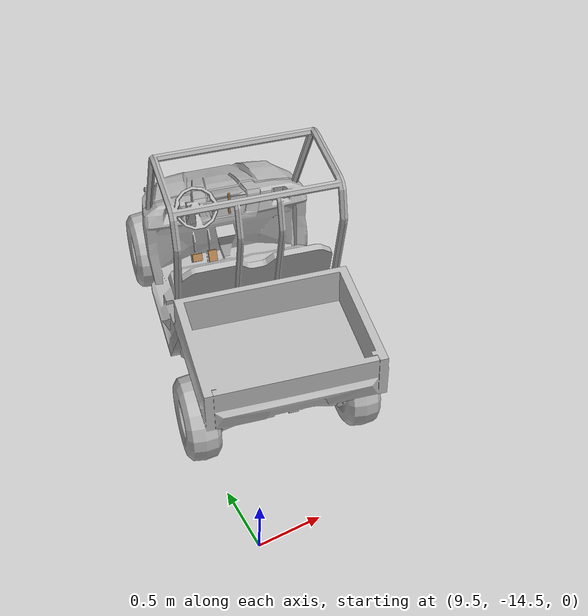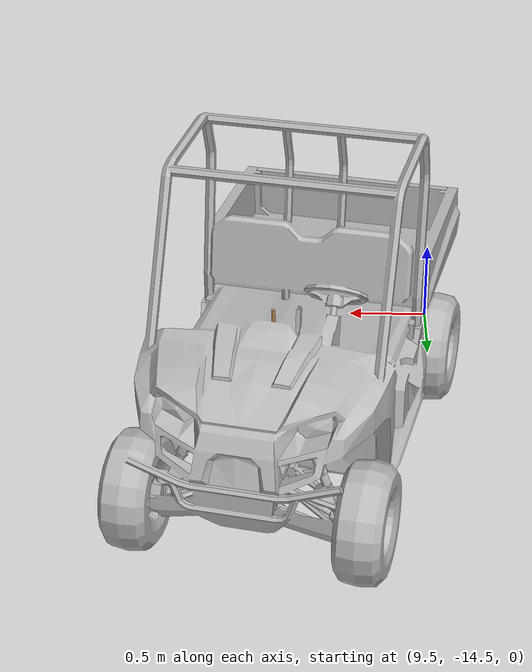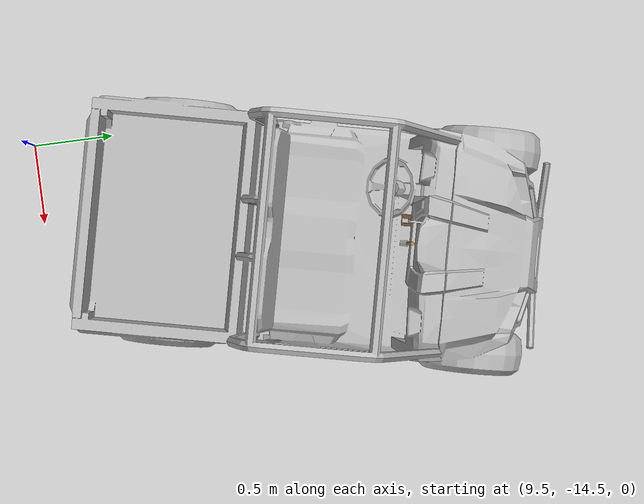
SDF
<sdf version="1.6">
 <world name="default">
  <model name="polaris_ranger_ev_clone_1_clone_clone_clone_clone_9">
   <static>true</static>
   <link name="chassis">
    <inertial>
     <mass>720</mass>
     <inertia><ixx>140</ixx><ixy>0</ixy><iyy>550</iyy><ixz>0</ixz><iyz>0</iyz><izz>550</izz></inertia>
    </inertial>
    <visual name="visual">
     <pose>0 0 0 0 0 -1.5708</pose>
     <geometry><mesh><uri>model://polaris_ranger_ev/meshes/polaris.dae</uri><scale>1 1 1</scale></mesh></geometry>
     <material>
      <script>
       <uri>model://polaris_ranger_ev/materials/scripts</uri>
       <uri>model://polaris_ranger_ev/materials/textures</uri>
       <name>Polaris/Diffuse</name>
      </script>
     </material>
    </visual>
    <collision name="chassis_bottom">
     <pose>0 0 0.35 0 -0 0</pose>
     <geometry><box><size>2 1 0.1</size></box></geometry>
    </collision>
    <collision name="cargo_bottom">
     <pose>-0.9 0 0.9 0 -0 0</pose>
     <geometry><box><size>0.9 1.2 0.01</size></box></geometry>
    </collision>
    <collision name="cargo_front">
     <pose>-0.45 0 1.025 0 -0 0</pose>
     <geometry><box><size>0.05 1.2 0.25</size></box></geometry>
    </collision>
    <collision name="cargo_back">
     <pose>-1.35 0 1.025 0 -0 0</pose>
     <geometry><box><size>0.05 1.2 0.25</size></box></geometry>
    </collision>
    <collision name="cargo_left">
     <pose>-0.9 0.6 1.025 0 -0 0</pose>
     <geometry><box><size>0.9 0.05 0.25</size></box></geometry>
    </collision>
    <collision name="cargo_right">
     <pose>-0.9 -0.6 1.025 0 -0 0</pose>
     <geometry><box><size>0.9 0.05 0.25</size></box></geometry>
    </collision>
    <collision name="seat">
     <pose>-0.1 0 0.625 0 -0 0</pose>
     <geometry><box><size>0.6 1 0.65</size></box></geometry>
    </collision>
    <collision name="seat_back">
     <pose>-0.3 0 1.125 0 -0.2 0</pose>
     <geometry><box><size>0.1 1 0.4</size></box></geometry>
    </collision>
    <collision name="engine">
     <pose>0.95 0 0.7 0 -0 0</pose>
     <geometry><box><size>0.58 1 0.8</size></box></geometry>
    </collision>
    <collision name="steering_column">
     <pose>0.525 0.3 1.025 0 -0.8 0</pose>
     <geometry><cylinder><radius>0.05</radius><length>0.45</length></cylinder></geometry>
    </collision>
   </link>
   <link name="rear_right_wheel">
    <pose>-0.85 -0.6 0.32 1.5708 -0 0</pose>
    <inertial>
     <mass>12</mass>
     <inertia><ixx>0.5</ixx><ixy>0</ixy><iyy>0.5</iyy><ixz>0</ixz><iyz>0</iyz><izz>1</izz></inertia>
    </inertial>
    <collision name="collision">
     <geometry><cylinder><radius>0.32</radius><length>0.23</length></cylinder></geometry>
     <surface>
      <friction><ode><mu>100000</mu><mu2>100000</mu2><slip1>0</slip1><slip2>0</slip2></ode></friction>
     </surface>
    </collision>
   </link>
   <joint name="rear_right_wheel_joint" type="revolute">
    <pose>0 0 -0.1 0 -0 0</pose>
    <child>rear_right_wheel</child>
    <parent>chassis</parent>
    <axis>
     <xyz>0 1 0</xyz>
     <use_parent_model_frame>1</use_parent_model_frame>
     <limit><lower>-1e+16</lower><upper>1e+16</upper></limit>
     <dynamics><spring_reference>0</spring_reference><spring_stiffness>0</spring_stiffness></dynamics>
    </axis>
    <physics><ode><limit><cfm>0</cfm><erp>0.9</erp></limit></ode></physics>
   </joint>
   <link name="rear_left_wheel">
    <pose>-0.85 0.6 0.32 1.5708 -0 0</pose>
    <inertial>
     <mass>12</mass>
     <inertia><ixx>0.5</ixx><ixy>0</ixy><iyy>0.5</iyy><ixz>0</ixz><iyz>0</iyz><izz>1</izz></inertia>
    </inertial>
    <collision name="collision">
     <geometry><cylinder><radius>0.32</radius><length>0.23</length></cylinder></geometry>
     <surface>
      <friction><ode><mu>100000</mu><mu2>100000</mu2><slip1>0</slip1><slip2>0</slip2></ode></friction>
     </surface>
    </collision>
   </link>
   <joint name="rear_left_wheel_joint" type="revolute">
    <child>rear_left_wheel</child>
    <parent>chassis</parent>
    <axis>
     <xyz>0 1 0</xyz>
     <use_parent_model_frame>1</use_parent_model_frame>
     <limit><lower>-1e+16</lower><upper>1e+16</upper></limit>
     <dynamics><spring_reference>0</spring_reference><spring_stiffness>0</spring_stiffness></dynamics>
    </axis>
    <physics><ode><limit><cfm>0</cfm><erp>0.9</erp></limit></ode></physics>
   </joint>
   <link name="front_right_wheel">
    <pose>1.03 -0.6 0.32 1.5708 -0 0</pose>
    <inertial>
     <mass>12</mass>
     <inertia><ixx>0.5</ixx><ixy>0</ixy><iyy>0.5</iyy><ixz>0</ixz><iyz>0</iyz><izz>1</izz></inertia>
    </inertial>
    <collision name="collision">
     <geometry><cylinder><radius>0.32</radius><length>0.23</length></cylinder></geometry>
     <surface>
      <friction><ode><mu>100000</mu><mu2>100000</mu2><slip1>0</slip1><slip2>0</slip2></ode></friction>
     </surface>
    </collision>
   </link>
   <link name="front_right_wheel_steering_block">
    <pose>1.03 -0.5 0.32 1.5708 -0 0</pose>
    <inertial>
     <mass>1</mass>
     <inertia><ixx>1</ixx><ixy>0</ixy><iyy>1</iyy><ixz>0</ixz><iyz>0</iyz><izz>1</izz></inertia>
    </inertial>
    <collision name="collision">
     <geometry><cylinder><radius>0.05</radius><length>0.01</length></cylinder></geometry>
    </collision>
   </link>
   <joint name="front_right_steering_joint" type="revolute">
    <child>front_right_wheel_steering_block</child>
    <parent>chassis</parent>
    <axis>
     <xyz>0 0 1</xyz>
     <limit><lower>-1</lower><upper>1</upper></limit>
     <use_parent_model_frame>1</use_parent_model_frame>
     <dynamics><spring_reference>0</spring_reference><spring_stiffness>0</spring_stiffness></dynamics>
    </axis>
    <physics><ode><limit><cfm>0</cfm><erp>0.9</erp></limit></ode></physics>
   </joint>
   <joint name="front_right_wheel_joint" type="revolute">
    <child>front_right_wheel</child>
    <parent>front_right_wheel_steering_block</parent>
    <axis>
     <xyz>0 1 0</xyz>
     <use_parent_model_frame>1</use_parent_model_frame>
     <limit><lower>-1e+16</lower><upper>1e+16</upper></limit>
     <dynamics><spring_reference>0</spring_reference><spring_stiffness>0</spring_stiffness></dynamics>
    </axis>
    <physics><ode><limit><cfm>0</cfm><erp>0.9</erp></limit></ode></physics>
   </joint>
   <link name="front_left_wheel">
    <pose>1.03 0.6 0.32 1.5708 -0 0</pose>
    <inertial>
     <mass>12</mass>
     <inertia><ixx>0.5</ixx><ixy>0</ixy><iyy>0.5</iyy><ixz>0</ixz><iyz>0</iyz><izz>1</izz></inertia>
    </inertial>
    <collision name="collision">
     <geometry><cylinder><radius>0.32</radius><length>0.23</length></cylinder></geometry>
     <surface>
      <friction><ode><mu>100000</mu><mu2>100000</mu2><slip1>0</slip1><slip2>0</slip2></ode></friction>
     </surface>
    </collision>
   </link>
   <link name="front_left_wheel_steering_block">
    <pose>1.03 0.5 0.32 1.5708 -0 0</pose>
    <inertial>
     <mass>1</mass>
     <inertia><ixx>1</ixx><ixy>0</ixy><iyy>1</iyy><ixz>0</ixz><iyz>0</iyz><izz>1</izz></inertia>
    </inertial>
    <collision name="collision">
     <geometry><cylinder><radius>0.05</radius><length>0.01</length></cylinder></geometry>
    </collision>
   </link>
   <joint name="front_left_steering_joint" type="revolute">
    <child>front_left_wheel_steering_block</child>
    <parent>chassis</parent>
    <axis>
     <xyz>0 0 1</xyz>
     <limit><lower>-1</lower><upper>1</upper></limit>
     <use_parent_model_frame>1</use_parent_model_frame>
     <dynamics><spring_reference>0</spring_reference><spring_stiffness>0</spring_stiffness></dynamics>
    </axis>
    <physics><ode><limit><cfm>0</cfm><erp>0.9</erp></limit></ode></physics>
   </joint>
   <joint name="front_left_wheel_joint" type="revolute">
    <child>front_left_wheel</child>
    <parent>front_left_wheel_steering_block</parent>
    <axis>
     <xyz>0 1 0</xyz>
     <use_parent_model_frame>1</use_parent_model_frame>
     <limit><lower>-1e+16</lower><upper>1e+16</upper></limit>
     <dynamics><spring_reference>0</spring_reference><spring_stiffness>0</spring_stiffness></dynamics>
    </axis>
    <physics><ode><limit><cfm>0</cfm><erp>0.9</erp></limit></ode></physics>
   </joint>
   <link name="gas_pedal">
    <pose>0.53 0.14 0.56 0 -1 0</pose>
    <gravity>0</gravity>
    <inertial>
     <mass>0.1</mass>
     <inertia><ixx>0.01</ixx><ixy>0</ixy><ixz>0</ixz><iyy>0.01</iyy><iyz>0</iyz><izz>0.01</izz></inertia>
    </inertial>
    <collision name="gas_pedal_collision"><geometry><box><size>0.12 0.07 0.03</size></box></geometry></collision>
    <visual name="gas_pedal_visual">
     <geometry><box><size>0.12 0.07 0.03</size></box></geometry>
     <material>
      <script><uri>file://media/materials/scripts/gazebo.material</uri><name>Gazebo/Wood</name></script>
      <ambient>0.2 0.2 0.2 1</ambient>
      <diffuse>0.2 0.2 0.2 1</diffuse>
      <specular>0.2 0.2 0.2 1</specular>
      <emissive>0.5 0.5 0.5 1</emissive>
     </material>
    </visual>
   </link>
   <link name="brake_pedal">
    <gravity>0</gravity>
    <pose>0.54 0.27 0.58 0 -1 0</pose>
    <inertial>
     <mass>0.1</mass>
     <inertia><ixx>0.01</ixx><ixy>0</ixy><ixz>0</ixz><iyy>0.01</iyy><iyz>0</iyz><izz>0.01</izz></inertia>
    </inertial>
    <collision name="brake_pedal_collision">
     <geometry><box><size>0.06 0.08 0.03</size></box></geometry>
    </collision>
    <visual name="brake_pedal_visual">
     <geometry><box><size>0.06 0.08 0.03</size></box></geometry>
     <material>
      <script><uri>file://media/materials/scripts/gazebo.material</uri><name>Gazebo/Wood</name></script>
      <ambient>0.2 0.2 0.2 1</ambient>
      <diffuse>0.2 0.2 0.2 1</diffuse>
      <specular>0.2 0.2 0.2 1</specular>
      <emissive>0.5 0.5 0.5 1</emissive>
     </material>
    </visual>
   </link>
   <link name="steering_wheel">
    <pose>0.37 0.3 1.2 0 -0.8 0</pose>
    <inertial>
     <mass>1</mass>
     <inertia><ixx>0.1</ixx><ixy>0</ixy><ixz>0</ixz><iyy>0.1</iyy><iyz>0</iyz><izz>1</izz></inertia>
    </inertial>
    <collision name="steering_wheel_post_left">
     <pose>0 0.08 0 1.5708 -0 0</pose>
     <geometry><cylinder><radius>0.02</radius><length>0.15</length></cylinder></geometry>
    </collision>
    <collision name="steering_wheel_post_right">
     <pose>0 -0.08 0 1.5708 -0 0</pose>
     <geometry><cylinder><radius>0.02</radius><length>0.15</length></cylinder></geometry>
    </collision>
    <collision name="steering_wheel_post_middle">
     <pose>-0.08 0 0 3.14159 1.57079 3.14159</pose>
     <geometry><cylinder><radius>0.02</radius><length>0.15</length></cylinder></geometry>
    </collision>
    <collision name="collision00">
     <pose>0.15 0 0 3.14159 1.57079 -1.57079</pose>
     <geometry><cylinder><length>0.105066</length><radius>0.01</radius></cylinder></geometry>
    </collision>
    <collision name="collision01">
     <pose>0.121353 0.088168 0 3.14159 1.57079 -0.942483</pose>
     <geometry><cylinder><length>0.105066</length><radius>0.01</radius></cylinder></geometry>
    </collision>
    <collision name="collision02">
     <pose>0.046353 0.142658 0 3.14159 1.57079 -0.314163</pose>
     <geometry><cylinder><length>0.105066</length><radius>0.01</radius></cylinder></geometry>
    </collision>
    <collision name="collision03">
     <pose>-0.046353 0.142658 0 3.14159 1.57079 0.314163</pose>
     <geometry><cylinder><length>0.105066</length><radius>0.01</radius></cylinder></geometry>
    </collision>
    <collision name="collision04">
     <pose>-0.121353 0.088168 0 -3.14159 1.57079 0.942483</pose>
     <geometry><cylinder><length>0.105066</length><radius>0.01</radius></cylinder></geometry>
    </collision>
    <collision name="collision05">
     <pose>-0.15 0 0 -3.14159 1.57079 1.57079</pose>
     <geometry><cylinder><length>0.105066</length><radius>0.01</radius></cylinder></geometry>
    </collision>
    <collision name="collision06">
     <pose>-0.121353 -0.088168 0 3.14159 1.57079 2.19912</pose>
     <geometry><cylinder><length>0.105066</length><radius>0.01</radius></cylinder></geometry>
    </collision>
    <collision name="collision07">
     <pose>-0.046353 -0.142658 0 -3.14159 1.57079 2.82743</pose>
     <geometry><cylinder><length>0.105066</length><radius>0.01</radius></cylinder></geometry>
    </collision>
    <collision name="collision08">
     <pose>0.046353 -0.142658 0 3.14159 1.57079 -2.82743</pose>
     <geometry><cylinder><length>0.105066</length><radius>0.01</radius></cylinder></geometry>
    </collision>
    <collision name="collision09">
     <pose>0.121353 -0.088168 0 -3.14159 1.57079 -2.19911</pose>
     <geometry><cylinder><length>0.105066</length><radius>0.01</radius></cylinder></geometry>
    </collision>
   </link>
   <link name="hand_brake">
    <pose>0.5 0 1.05 3.14159 -0.058407 3.14159</pose>
    <inertial>
     <mass>1</mass>
     <pose>0 0 -0.15 0 -0 0</pose>
     <inertia><ixx>0.1</ixx><ixy>0</ixy><ixz>0</ixz><iyy>0.1</iyy><iyz>0</iyz><izz>1</izz></inertia>
    </inertial>
    <collision name="hand_brake_collision">
     <pose>0 0 -0.1 0 -0 0</pose>
     <geometry><cylinder><radius>0.01</radius><length>0.2</length></cylinder></geometry>
    </collision>
    <visual name="hand_brake_visual">
     <pose>0 0 -0.1 0 -0 0</pose>
     <geometry><cylinder><radius>0.01</radius><length>0.2</length></cylinder></geometry>
     <material>
      <script><uri>file://media/materials/scripts/gazebo.material</uri><name>Gazebo/Wood</name></script>
     </material>
    </visual>
   </link>
   <joint name="gas_joint" type="prismatic">
    <parent>chassis</parent>
    <child>gas_pedal</child>
    <axis>
     <xyz>1 0 -1</xyz>
     <limit><lower>0</lower><upper>0.15</upper></limit>
     <use_parent_model_frame>1</use_parent_model_frame>
     <dynamics><spring_reference>0</spring_reference><spring_stiffness>0</spring_stiffness></dynamics>
    </axis>
   </joint>
   <joint name="brake_joint" type="prismatic">
    <parent>chassis</parent>
    <child>brake_pedal</child>
    <axis>
     <xyz>1 0 -0.6</xyz>
     <limit><lower>0</lower><upper>0.15</upper></limit>
     <use_parent_model_frame>1</use_parent_model_frame>
     <dynamics><spring_reference>0</spring_reference><spring_stiffness>0</spring_stiffness></dynamics>
    </axis>
   </joint>
   <joint name="steering_joint" type="revolute">
    <pose>0 0 0 1.5708 -0.8 0</pose>
    <parent>chassis</parent>
    <child>steering_wheel</child>
    <axis>
     <xyz>-1 0 1.023</xyz>
     <limit><lower>-7.853</lower><upper>7.853</upper></limit>
     <use_parent_model_frame>1</use_parent_model_frame>
     <dynamics><spring_reference>0</spring_reference><spring_stiffness>0</spring_stiffness></dynamics>
    </axis>
   </joint>
   <joint name="hand_brake_joint" type="revolute">
    <parent>chassis</parent>
    <child>hand_brake</child>
    <axis>
     <xyz>0 -1 0</xyz>
     <limit><lower>0</lower><upper>0.6</upper></limit>
     <use_parent_model_frame>1</use_parent_model_frame>
     <dynamics><spring_reference>0</spring_reference><spring_stiffness>0</spring_stiffness></dynamics>
    </axis>
   </joint>
   <pose>10.302 -12.7734 -4.9e-05 -0 5e-05 1.35014</pose>
  </model>
 </world>
</sdf>
